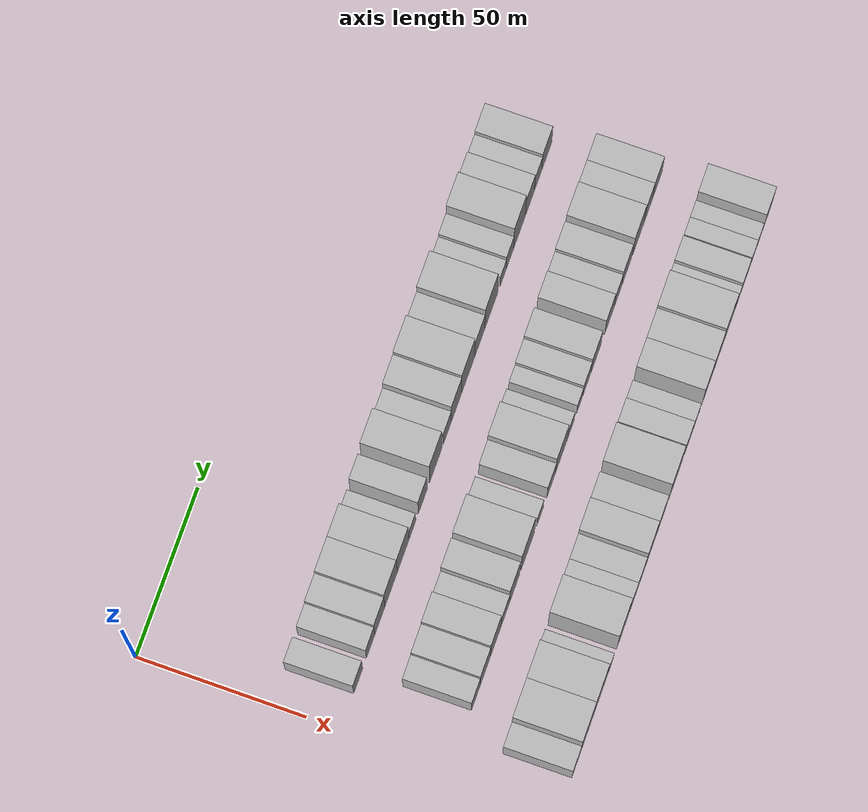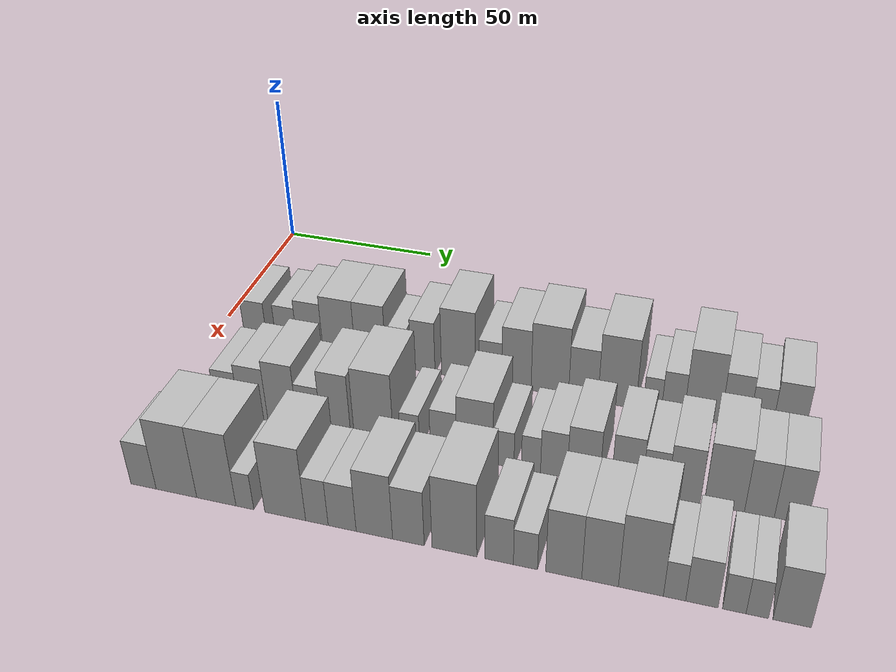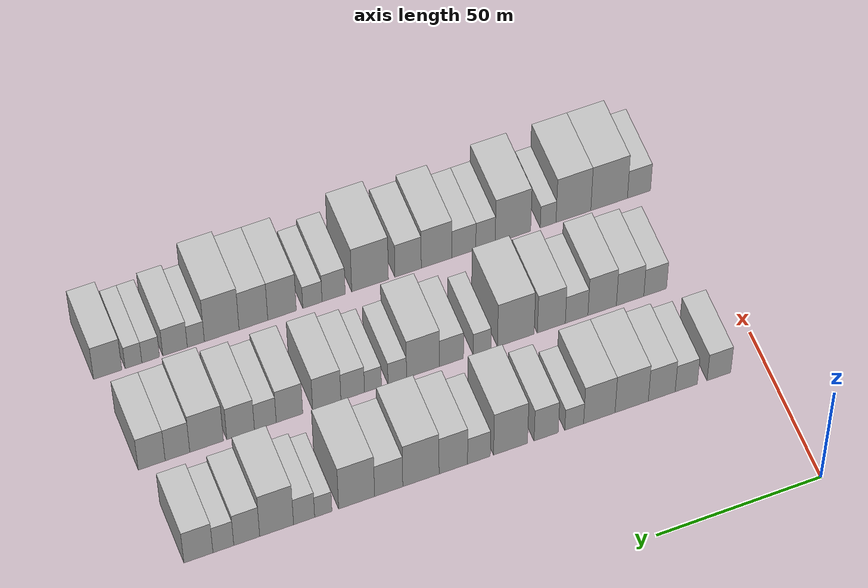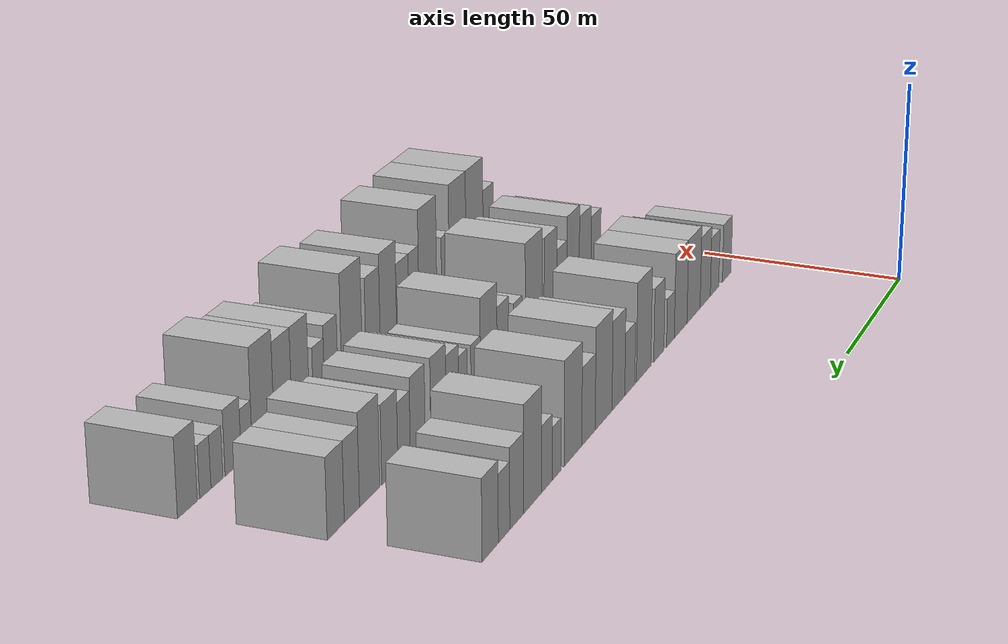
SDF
<sdf version="1.6">
 <world name="default">
  <model name="building_40">
   <static>1</static>
   <pose>50.0000 14.0486 0 0.000000 0.000000 0.000000</pose>
   <link name="link">
    <pose>0 0 7.50 0 0 0</pose>
    <collision name="collision"><geometry><box><size>20.0000 7.3120 15.0000</size></box></geometry></collision>
    <visual name="visual">
     <cast_shadows>0</cast_shadows>
     <geometry><box><size>20.0000 7.3120 15.0000</size></box></geometry>
     <material>
      <script>
       <uri>model://HANNAS_wall/materials/scripts</uri>
       <uri>model://HANNAS_wall/materials/textures</uri>
       <name>vrc/HANNAS_wall</name>
      </script>
     </material>
    </visual>
   </link>
  </model>
  <model name="building_41">
   <static>1</static>
   <pose>50.0000 24.1313 0 0.000000 0.000000 0.000000</pose>
   <link name="link">
    <pose>0 0 7.50 0 0 0</pose>
    <collision name="collision"><geometry><box><size>20.0000 6.8536 15.0000</size></box></geometry></collision>
    <visual name="visual">
     <cast_shadows>0</cast_shadows>
     <geometry><box><size>20.0000 6.8536 15.0000</size></box></geometry>
     <material>
      <script>
       <uri>model://HANNAS_wall/materials/scripts</uri>
       <uri>model://HANNAS_wall/materials/textures</uri>
       <name>vrc/HANNAS_wall</name>
      </script>
     </material>
    </visual>
   </link>
  </model>
  <model name="building_42">
   <static>1</static>
   <pose>50.0000 31.6831 0 0.000000 0.000000 0.000000</pose>
   <link name="link">
    <pose>0 0 9.00 0 0 0</pose>
    <collision name="collision"><geometry><box><size>20.0000 8.2501 18.0000</size></box></geometry></collision>
    <visual name="visual">
     <cast_shadows>0</cast_shadows>
     <geometry><box><size>20.0000 8.2501 18.0000</size></box></geometry>
     <material>
      <script>
       <uri>model://HANNAS_wall/materials/scripts</uri>
       <uri>model://HANNAS_wall/materials/textures</uri>
       <name>vrc/HANNAS_wall</name>
      </script>
     </material>
    </visual>
   </link>
  </model>
  <model name="building_43">
   <static>1</static>
   <pose>50.0000 40.9105 0 0.000000 0.000000 0.000000</pose>
   <link name="link">
    <pose>0 0 10.50 0 0 0</pose>
    <collision name="collision"><geometry><box><size>20.0000 10.2048 21.0000</size></box></geometry></collision>
    <visual name="visual">
     <cast_shadows>0</cast_shadows>
     <geometry><box><size>20.0000 10.2048 21.0000</size></box></geometry>
     <material>
      <script>
       <uri>model://HANNAS_wall/materials/scripts</uri>
       <uri>model://HANNAS_wall/materials/textures</uri>
       <name>vrc/HANNAS_wall</name>
      </script>
     </material>
    </visual>
   </link>
  </model>
  <model name="building_44">
   <static>1</static>
   <pose>50.0000 50.8271 0 0.000000 0.000000 0.000000</pose>
   <link name="link">
    <pose>0 0 10.50 0 0 0</pose>
    <collision name="collision"><geometry><box><size>20.0000 9.6284 21.0000</size></box></geometry></collision>
    <visual name="visual">
     <cast_shadows>0</cast_shadows>
     <geometry><box><size>20.0000 9.6284 21.0000</size></box></geometry>
     <material>
      <script>
       <uri>model://HANNAS_wall/materials/scripts</uri>
       <uri>model://HANNAS_wall/materials/textures</uri>
       <name>vrc/HANNAS_wall</name>
      </script>
     </material>
    </visual>
   </link>
  </model>
  <model name="building_45">
   <static>1</static>
   <pose>50.0000 58.5108 0 0.000000 0.000000 0.000000</pose>
   <link name="link">
    <pose>0 0 6.00 0 0 0</pose>
    <collision name="collision"><geometry><box><size>20.0000 5.7389 12.0000</size></box></geometry></collision>
    <visual name="visual">
     <cast_shadows>0</cast_shadows>
     <geometry><box><size>20.0000 5.7389 12.0000</size></box></geometry>
     <material>
      <script>
       <uri>model://HANNAS_wall/materials/scripts</uri>
       <uri>model://HANNAS_wall/materials/textures</uri>
       <name>vrc/HANNAS_wall</name>
      </script>
     </material>
    </visual>
   </link>
  </model>
  <model name="building_46">
   <static>1</static>
   <pose>50.0000 67.0606 0 0.000000 0.000000 0.000000</pose>
   <link name="link">
    <pose>0 0 9.00 0 0 0</pose>
    <collision name="collision"><geometry><box><size>20.0000 7.3606 18.0000</size></box></geometry></collision>
    <visual name="visual">
     <cast_shadows>0</cast_shadows>
     <geometry><box><size>20.0000 7.3606 18.0000</size></box></geometry>
     <material>
      <script>
       <uri>model://HANNAS_wall/materials/scripts</uri>
       <uri>model://HANNAS_wall/materials/textures</uri>
       <name>vrc/HANNAS_wall</name>
      </script>
     </material>
    </visual>
   </link>
  </model>
  <model name="building_47">
   <static>1</static>
   <pose>50.0000 77.8903 0 0.000000 0.000000 0.000000</pose>
   <link name="link">
    <pose>0 0 12.00 0 0 0</pose>
    <collision name="collision"><geometry><box><size>20.0000 10.2989 24.0000</size></box></geometry></collision>
    <visual name="visual">
     <cast_shadows>0</cast_shadows>
     <geometry><box><size>20.0000 10.2989 24.0000</size></box></geometry>
     <material>
      <script>
       <uri>model://HANNAS_wall/materials/scripts</uri>
       <uri>model://HANNAS_wall/materials/textures</uri>
       <name>vrc/HANNAS_wall</name>
      </script>
     </material>
    </visual>
   </link>
  </model>
  <model name="building_48">
   <static>1</static>
   <pose>50.0000 87.4814 0 0.000000 0.000000 0.000000</pose>
   <link name="link">
    <pose>0 0 7.50 0 0 0</pose>
    <collision name="collision"><geometry><box><size>20.0000 6.8834 15.0000</size></box></geometry></collision>
    <visual name="visual">
     <cast_shadows>0</cast_shadows>
     <geometry><box><size>20.0000 6.8834 15.0000</size></box></geometry>
     <material>
      <script>
       <uri>model://HANNAS_wall/materials/scripts</uri>
       <uri>model://HANNAS_wall/materials/textures</uri>
       <name>vrc/HANNAS_wall</name>
      </script>
     </material>
    </visual>
   </link>
  </model>
  <model name="building_49">
   <static>1</static>
   <pose>50.0000 95.2231 0 0.000000 0.000000 0.000000</pose>
   <link name="link">
    <pose>0 0 10.50 0 0 0</pose>
    <collision name="collision"><geometry><box><size>20.0000 8.5998 21.0000</size></box></geometry></collision>
    <visual name="visual">
     <cast_shadows>0</cast_shadows>
     <geometry><box><size>20.0000 8.5998 21.0000</size></box></geometry>
     <material>
      <script>
       <uri>model://HANNAS_wall/materials/scripts</uri>
       <uri>model://HANNAS_wall/materials/textures</uri>
       <name>vrc/HANNAS_wall</name>
      </script>
     </material>
    </visual>
   </link>
  </model>
  <model name="building_50">
   <static>1</static>
   <pose>50.0000 104.9872 0 0.000000 0.000000 0.000000</pose>
   <link name="link">
    <pose>0 0 12.00 0 0 0</pose>
    <collision name="collision"><geometry><box><size>20.0000 10.9284 24.0000</size></box></geometry></collision>
    <visual name="visual">
     <cast_shadows>0</cast_shadows>
     <geometry><box><size>20.0000 10.9284 24.0000</size></box></geometry>
     <material>
      <script>
       <uri>model://HANNAS_wall/materials/scripts</uri>
       <uri>model://HANNAS_wall/materials/textures</uri>
       <name>vrc/HANNAS_wall</name>
      </script>
     </material>
    </visual>
   </link>
  </model>
  <model name="building_51">
   <static>1</static>
   <pose>50.0000 114.6796 0 0.000000 0.000000 0.000000</pose>
   <link name="link">
    <pose>0 0 9.00 0 0 0</pose>
    <collision name="collision"><geometry><box><size>20.0000 8.4564 18.0000</size></box></geometry></collision>
    <visual name="visual">
     <cast_shadows>0</cast_shadows>
     <geometry><box><size>20.0000 8.4564 18.0000</size></box></geometry>
     <material>
      <script>
       <uri>model://HANNAS_wall/materials/scripts</uri>
       <uri>model://HANNAS_wall/materials/textures</uri>
       <name>vrc/HANNAS_wall</name>
      </script>
     </material>
    </visual>
   </link>
  </model>
  <model name="building_52">
   <static>1</static>
   <pose>50.0000 124.3021 0 0.000000 0.000000 0.000000</pose>
   <link name="link">
    <pose>0 0 12.00 0 0 0</pose>
    <collision name="collision"><geometry><box><size>20.0000 10.7887 24.0000</size></box></geometry></collision>
    <visual name="visual">
     <cast_shadows>0</cast_shadows>
     <geometry><box><size>20.0000 10.7887 24.0000</size></box></geometry>
     <material>
      <script>
       <uri>model://HANNAS_wall/materials/scripts</uri>
       <uri>model://HANNAS_wall/materials/textures</uri>
       <name>vrc/HANNAS_wall</name>
      </script>
     </material>
    </visual>
   </link>
  </model>
  <model name="building_53">
   <static>1</static>
   <pose>50.0000 134.2766 0 0.000000 0.000000 0.000000</pose>
   <link name="link">
    <pose>0 0 6.00 0 0 0</pose>
    <collision name="collision"><geometry><box><size>20.0000 5.1604 12.0000</size></box></geometry></collision>
    <visual name="visual">
     <cast_shadows>0</cast_shadows>
     <geometry><box><size>20.0000 5.1604 12.0000</size></box></geometry>
     <material>
      <script>
       <uri>model://HANNAS_wall/materials/scripts</uri>
       <uri>model://HANNAS_wall/materials/textures</uri>
       <name>vrc/HANNAS_wall</name>
      </script>
     </material>
    </visual>
   </link>
  </model>
  <model name="building_54">
   <static>1</static>
   <pose>50.0000 140.0000 0 0.000000 0.000000 0.000000</pose>
   <link name="link">
    <pose>0 0 7.50 0 0 0</pose>
    <collision name="collision"><geometry><box><size>20.0000 6.2863 15.0000</size></box></geometry></collision>
    <visual name="visual">
     <cast_shadows>0</cast_shadows>
     <geometry><box><size>20.0000 6.2863 15.0000</size></box></geometry>
     <material>
      <script>
       <uri>model://HANNAS_wall/materials/scripts</uri>
       <uri>model://HANNAS_wall/materials/textures</uri>
       <name>vrc/HANNAS_wall</name>
      </script>
     </material>
    </visual>
   </link>
  </model>
  <model name="building_55">
   <static>1</static>
   <pose>50.0000 148.1818 0 0.000000 0.000000 0.000000</pose>
   <link name="link">
    <pose>0 0 12.00 0 0 0</pose>
    <collision name="collision"><geometry><box><size>20.0000 10.0774 24.0000</size></box></geometry></collision>
    <visual name="visual">
     <cast_shadows>0</cast_shadows>
     <geometry><box><size>20.0000 10.0774 24.0000</size></box></geometry>
     <material>
      <script>
       <uri>model://HANNAS_wall/materials/scripts</uri>
       <uri>model://HANNAS_wall/materials/textures</uri>
       <name>vrc/HANNAS_wall</name>
      </script>
     </material>
    </visual>
   </link>
  </model>
  <model name="building_56">
   <static>1</static>
   <pose>50.0000 157.0683 0 0.000000 0.000000 0.000000</pose>
   <link name="link">
    <pose>0 0 9.00 0 0 0</pose>
    <collision name="collision"><geometry><box><size>20.0000 7.6956 18.0000</size></box></geometry></collision>
    <visual name="visual">
     <cast_shadows>0</cast_shadows>
     <geometry><box><size>20.0000 7.6956 18.0000</size></box></geometry>
     <material>
      <script>
       <uri>model://HANNAS_wall/materials/scripts</uri>
       <uri>model://HANNAS_wall/materials/textures</uri>
       <name>vrc/HANNAS_wall</name>
      </script>
     </material>
    </visual>
   </link>
  </model>
  <model name="building_57">
   <static>1</static>
   <pose>50.0000 164.0020 0 0.000000 0.000000 0.000000</pose>
   <link name="link">
    <pose>0 0 7.50 0 0 0</pose>
    <collision name="collision"><geometry><box><size>20.0000 6.1717 15.0000</size></box></geometry></collision>
    <visual name="visual">
     <cast_shadows>0</cast_shadows>
     <geometry><box><size>20.0000 6.1717 15.0000</size></box></geometry>
     <material>
      <script>
       <uri>model://HANNAS_wall/materials/scripts</uri>
       <uri>model://HANNAS_wall/materials/textures</uri>
       <name>vrc/HANNAS_wall</name>
      </script>
     </material>
    </visual>
   </link>
  </model>
  <model name="building_58">
   <static>1</static>
   <pose>50.0000 171.3934 0 0.000000 0.000000 0.000000</pose>
   <link name="link">
    <pose>0 0 9.00 0 0 0</pose>
    <collision name="collision"><geometry><box><size>20.0000 8.6112 18.0000</size></box></geometry></collision>
    <visual name="visual">
     <cast_shadows>0</cast_shadows>
     <geometry><box><size>20.0000 8.6112 18.0000</size></box></geometry>
     <material>
      <script>
       <uri>model://HANNAS_wall/materials/scripts</uri>
       <uri>model://HANNAS_wall/materials/textures</uri>
       <name>vrc/HANNAS_wall</name>
      </script>
     </material>
    </visual>
   </link>
  </model>
  <model name="building_115">
   <static>1</static>
   <pose>82.0000 20.3005 0 0.000000 0.000000 0.000000</pose>
   <link name="link">
    <pose>0 0 7.50 0 0 0</pose>
    <collision name="collision"><geometry><box><size>20.0000 7.0862 15.0000</size></box></geometry></collision>
    <visual name="visual">
     <cast_shadows>0</cast_shadows>
     <geometry><box><size>20.0000 7.0862 15.0000</size></box></geometry>
     <material>
      <script>
       <uri>model://HANNAS_wall/materials/scripts</uri>
       <uri>model://HANNAS_wall/materials/textures</uri>
       <name>vrc/HANNAS_wall</name>
      </script>
     </material>
    </visual>
   </link>
  </model>
  <model name="building_116">
   <static>1</static>
   <pose>82.0000 28.1052 0 0.000000 0.000000 0.000000</pose>
   <link name="link">
    <pose>0 0 9.00 0 0 0</pose>
    <collision name="collision"><geometry><box><size>20.0000 8.5234 18.0000</size></box></geometry></collision>
    <visual name="visual">
     <cast_shadows>0</cast_shadows>
     <geometry><box><size>20.0000 8.5234 18.0000</size></box></geometry>
     <material>
      <script>
       <uri>model://HANNAS_wall/materials/scripts</uri>
       <uri>model://HANNAS_wall/materials/textures</uri>
       <name>vrc/HANNAS_wall</name>
      </script>
     </material>
    </visual>
   </link>
  </model>
  <model name="building_117">
   <static>1</static>
   <pose>82.0000 36.7835 0 0.000000 0.000000 0.000000</pose>
   <link name="link">
    <pose>0 0 10.50 0 0 0</pose>
    <collision name="collision"><geometry><box><size>20.0000 8.8331 21.0000</size></box></geometry></collision>
    <visual name="visual">
     <cast_shadows>0</cast_shadows>
     <geometry><box><size>20.0000 8.8331 21.0000</size></box></geometry>
     <material>
      <script>
       <uri>model://HANNAS_wall/materials/scripts</uri>
       <uri>model://HANNAS_wall/materials/textures</uri>
       <name>vrc/HANNAS_wall</name>
      </script>
     </material>
    </visual>
   </link>
  </model>
  <model name="building_118">
   <static>1</static>
   <pose>82.0000 44.6955 0 0.000000 0.000000 0.000000</pose>
   <link name="link">
    <pose>0 0 7.50 0 0 0</pose>
    <collision name="collision"><geometry><box><size>20.0000 6.9909 15.0000</size></box></geometry></collision>
    <visual name="visual">
     <cast_shadows>0</cast_shadows>
     <geometry><box><size>20.0000 6.9909 15.0000</size></box></geometry>
     <material>
      <script>
       <uri>model://HANNAS_wall/materials/scripts</uri>
       <uri>model://HANNAS_wall/materials/textures</uri>
       <name>vrc/HANNAS_wall</name>
      </script>
     </material>
    </visual>
   </link>
  </model>
  <model name="building_119">
   <static>1</static>
   <pose>82.0000 52.5071 0 0.000000 0.000000 0.000000</pose>
   <link name="link">
    <pose>0 0 10.50 0 0 0</pose>
    <collision name="collision"><geometry><box><size>20.0000 8.6322 21.0000</size></box></geometry></collision>
    <visual name="visual">
     <cast_shadows>0</cast_shadows>
     <geometry><box><size>20.0000 8.6322 21.0000</size></box></geometry>
     <material>
      <script>
       <uri>model://HANNAS_wall/materials/scripts</uri>
       <uri>model://HANNAS_wall/materials/textures</uri>
       <name>vrc/HANNAS_wall</name>
      </script>
     </material>
    </visual>
   </link>
  </model>
  <model name="building_120">
   <static>1</static>
   <pose>82.0000 63.4672 0 0.000000 0.000000 0.000000</pose>
   <link name="link">
    <pose>0 0 12.00 0 0 0</pose>
    <collision name="collision"><geometry><box><size>20.0000 11.2880 24.0000</size></box></geometry></collision>
    <visual name="visual">
     <cast_shadows>0</cast_shadows>
     <geometry><box><size>20.0000 11.2880 24.0000</size></box></geometry>
     <material>
      <script>
       <uri>model://HANNAS_wall/materials/scripts</uri>
       <uri>model://HANNAS_wall/materials/textures</uri>
       <name>vrc/HANNAS_wall</name>
      </script>
     </material>
    </visual>
   </link>
  </model>
  <model name="building_121">
   <static>1</static>
   <pose>82.0000 73.8252 0 0.000000 0.000000 0.000000</pose>
   <link name="link">
    <pose>0 0 6.00 0 0 0</pose>
    <collision name="collision"><geometry><box><size>20.0000 5.4280 12.0000</size></box></geometry></collision>
    <visual name="visual">
     <cast_shadows>0</cast_shadows>
     <geometry><box><size>20.0000 5.4280 12.0000</size></box></geometry>
     <material>
      <script>
       <uri>model://HANNAS_wall/materials/scripts</uri>
       <uri>model://HANNAS_wall/materials/textures</uri>
       <name>vrc/HANNAS_wall</name>
      </script>
     </material>
    </visual>
   </link>
  </model>
  <model name="building_122">
   <static>1</static>
   <pose>82.0000 83.1907 0 0.000000 0.000000 0.000000</pose>
   <link name="link">
    <pose>0 0 7.50 0 0 0</pose>
    <collision name="collision"><geometry><box><size>20.0000 7.3030 15.0000</size></box></geometry></collision>
    <visual name="visual">
     <cast_shadows>0</cast_shadows>
     <geometry><box><size>20.0000 7.3030 15.0000</size></box></geometry>
     <material>
      <script>
       <uri>model://HANNAS_wall/materials/scripts</uri>
       <uri>model://HANNAS_wall/materials/textures</uri>
       <name>vrc/HANNAS_wall</name>
      </script>
     </material>
    </visual>
   </link>
  </model>
  <model name="building_123">
   <static>1</static>
   <pose>82.0000 91.8933 0 0.000000 0.000000 0.000000</pose>
   <link name="link">
    <pose>0 0 10.50 0 0 0</pose>
    <collision name="collision"><geometry><box><size>20.0000 10.1023 21.0000</size></box></geometry></collision>
    <visual name="visual">
     <cast_shadows>0</cast_shadows>
     <geometry><box><size>20.0000 10.1023 21.0000</size></box></geometry>
     <material>
      <script>
       <uri>model://HANNAS_wall/materials/scripts</uri>
       <uri>model://HANNAS_wall/materials/textures</uri>
       <name>vrc/HANNAS_wall</name>
      </script>
     </material>
    </visual>
   </link>
  </model>
  <model name="building_124">
   <static>1</static>
   <pose>82.0000 99.7608 0 0.000000 0.000000 0.000000</pose>
   <link name="link">
    <pose>0 0 6.00 0 0 0</pose>
    <collision name="collision"><geometry><box><size>20.0000 5.6327 12.0000</size></box></geometry></collision>
    <visual name="visual">
     <cast_shadows>0</cast_shadows>
     <geometry><box><size>20.0000 5.6327 12.0000</size></box></geometry>
     <material>
      <script>
       <uri>model://HANNAS_wall/materials/scripts</uri>
       <uri>model://HANNAS_wall/materials/textures</uri>
       <name>vrc/HANNAS_wall</name>
      </script>
     </material>
    </visual>
   </link>
  </model>
  <model name="building_125">
   <static>1</static>
   <pose>82.0000 107.1546 0 0.000000 0.000000 0.000000</pose>
   <link name="link">
    <pose>0 0 6.00 0 0 0</pose>
    <collision name="collision"><geometry><box><size>20.0000 5.1550 12.0000</size></box></geometry></collision>
    <visual name="visual">
     <cast_shadows>0</cast_shadows>
     <geometry><box><size>20.0000 5.1550 12.0000</size></box></geometry>
     <material>
      <script>
       <uri>model://HANNAS_wall/materials/scripts</uri>
       <uri>model://HANNAS_wall/materials/textures</uri>
       <name>vrc/HANNAS_wall</name>
      </script>
     </material>
    </visual>
   </link>
  </model>
  <model name="building_126">
   <static>1</static>
   <pose>82.0000 113.3103 0 0.000000 0.000000 0.000000</pose>
   <link name="link">
    <pose>0 0 7.50 0 0 0</pose>
    <collision name="collision"><geometry><box><size>20.0000 7.1564 15.0000</size></box></geometry></collision>
    <visual name="visual">
     <cast_shadows>0</cast_shadows>
     <geometry><box><size>20.0000 7.1564 15.0000</size></box></geometry>
     <material>
      <script>
       <uri>model://HANNAS_wall/materials/scripts</uri>
       <uri>model://HANNAS_wall/materials/textures</uri>
       <name>vrc/HANNAS_wall</name>
      </script>
     </material>
    </visual>
   </link>
  </model>
  <model name="building_127">
   <static>1</static>
   <pose>82.0000 121.1633 0 0.000000 0.000000 0.000000</pose>
   <link name="link">
    <pose>0 0 9.00 0 0 0</pose>
    <collision name="collision"><geometry><box><size>20.0000 8.5494 18.0000</size></box></geometry></collision>
    <visual name="visual">
     <cast_shadows>0</cast_shadows>
     <geometry><box><size>20.0000 8.5494 18.0000</size></box></geometry>
     <material>
      <script>
       <uri>model://HANNAS_wall/materials/scripts</uri>
       <uri>model://HANNAS_wall/materials/textures</uri>
       <name>vrc/HANNAS_wall</name>
      </script>
     </material>
    </visual>
   </link>
  </model>
  <model name="building_128">
   <static>1</static>
   <pose>82.0000 132.4394 0 0.000000 0.000000 0.000000</pose>
   <link name="link">
    <pose>0 0 9.00 0 0 0</pose>
    <collision name="collision"><geometry><box><size>20.0000 8.0028 18.0000</size></box></geometry></collision>
    <visual name="visual">
     <cast_shadows>0</cast_shadows>
     <geometry><box><size>20.0000 8.0028 18.0000</size></box></geometry>
     <material>
      <script>
       <uri>model://HANNAS_wall/materials/scripts</uri>
       <uri>model://HANNAS_wall/materials/textures</uri>
       <name>vrc/HANNAS_wall</name>
      </script>
     </material>
    </visual>
   </link>
  </model>
  <model name="building_129">
   <static>1</static>
   <pose>82.0000 139.7222 0 0.000000 0.000000 0.000000</pose>
   <link name="link">
    <pose>0 0 7.50 0 0 0</pose>
    <collision name="collision"><geometry><box><size>20.0000 6.5629 15.0000</size></box></geometry></collision>
    <visual name="visual">
     <cast_shadows>0</cast_shadows>
     <geometry><box><size>20.0000 6.5629 15.0000</size></box></geometry>
     <material>
      <script>
       <uri>model://HANNAS_wall/materials/scripts</uri>
       <uri>model://HANNAS_wall/materials/textures</uri>
       <name>vrc/HANNAS_wall</name>
      </script>
     </material>
    </visual>
   </link>
  </model>
  <model name="building_130">
   <static>1</static>
   <pose>82.0000 147.1626 0 0.000000 0.000000 0.000000</pose>
   <link name="link">
    <pose>0 0 9.00 0 0 0</pose>
    <collision name="collision"><geometry><box><size>20.0000 8.3179 18.0000</size></box></geometry></collision>
    <visual name="visual">
     <cast_shadows>0</cast_shadows>
     <geometry><box><size>20.0000 8.3179 18.0000</size></box></geometry>
     <material>
      <script>
       <uri>model://HANNAS_wall/materials/scripts</uri>
       <uri>model://HANNAS_wall/materials/textures</uri>
       <name>vrc/HANNAS_wall</name>
      </script>
     </material>
    </visual>
   </link>
  </model>
  <model name="building_131">
   <static>1</static>
   <pose>82.0000 157.3654 0 0.000000 0.000000 0.000000</pose>
   <link name="link">
    <pose>0 0 10.50 0 0 0</pose>
    <collision name="collision"><geometry><box><size>20.0000 10.0877 21.0000</size></box></geometry></collision>
    <visual name="visual">
     <cast_shadows>0</cast_shadows>
     <geometry><box><size>20.0000 10.0877 21.0000</size></box></geometry>
     <material>
      <script>
       <uri>model://HANNAS_wall/materials/scripts</uri>
       <uri>model://HANNAS_wall/materials/textures</uri>
       <name>vrc/HANNAS_wall</name>
      </script>
     </material>
    </visual>
   </link>
  </model>
  <model name="building_132">
   <static>1</static>
   <pose>82.0000 166.0904 0 0.000000 0.000000 0.000000</pose>
   <link name="link">
    <pose>0 0 9.00 0 0 0</pose>
    <collision name="collision"><geometry><box><size>20.0000 7.3622 18.0000</size></box></geometry></collision>
    <visual name="visual">
     <cast_shadows>0</cast_shadows>
     <geometry><box><size>20.0000 7.3622 18.0000</size></box></geometry>
     <material>
      <script>
       <uri>model://HANNAS_wall/materials/scripts</uri>
       <uri>model://HANNAS_wall/materials/textures</uri>
       <name>vrc/HANNAS_wall</name>
      </script>
     </material>
    </visual>
   </link>
  </model>
  <model name="building_133">
   <static>1</static>
   <pose>82.0000 173.7983 0 0.000000 0.000000 0.000000</pose>
   <link name="link">
    <pose>0 0 9.00 0 0 0</pose>
    <collision name="collision"><geometry><box><size>20.0000 8.0537 18.0000</size></box></geometry></collision>
    <visual name="visual">
     <cast_shadows>0</cast_shadows>
     <geometry><box><size>20.0000 8.0537 18.0000</size></box></geometry>
     <material>
      <script>
       <uri>model://HANNAS_wall/materials/scripts</uri>
       <uri>model://HANNAS_wall/materials/textures</uri>
       <name>vrc/HANNAS_wall</name>
      </script>
     </material>
    </visual>
   </link>
  </model>
  <model name="building_194">
   <static>1</static>
   <pose>114.0000 12.0042 0 0.000000 0.000000 0.000000</pose>
   <link name="link">
    <pose>0 0 7.50 0 0 0</pose>
    <collision name="collision"><geometry><box><size>20.0000 7.2663 15.0000</size></box></geometry></collision>
    <visual name="visual">
     <cast_shadows>0</cast_shadows>
     <geometry><box><size>20.0000 7.2663 15.0000</size></box></geometry>
     <material>
      <script>
       <uri>model://HANNAS_wall/materials/scripts</uri>
       <uri>model://HANNAS_wall/materials/textures</uri>
       <name>vrc/HANNAS_wall</name>
      </script>
     </material>
    </visual>
   </link>
  </model>
  <model name="building_195">
   <static>1</static>
   <pose>114.0000 21.3939 0 0.000000 0.000000 0.000000</pose>
   <link name="link">
    <pose>0 0 12.00 0 0 0</pose>
    <collision name="collision"><geometry><box><size>20.0000 11.5131 24.0000</size></box></geometry></collision>
    <visual name="visual">
     <cast_shadows>0</cast_shadows>
     <geometry><box><size>20.0000 11.5131 24.0000</size></box></geometry>
     <material>
      <script>
       <uri>model://HANNAS_wall/materials/scripts</uri>
       <uri>model://HANNAS_wall/materials/textures</uri>
       <name>vrc/HANNAS_wall</name>
      </script>
     </material>
    </visual>
   </link>
  </model>
  <model name="building_196">
   <static>1</static>
   <pose>114.0000 32.6145 0 0.000000 0.000000 0.000000</pose>
   <link name="link">
    <pose>0 0 12.00 0 0 0</pose>
    <collision name="collision"><geometry><box><size>20.0000 10.9281 24.0000</size></box></geometry></collision>
    <visual name="visual">
     <cast_shadows>0</cast_shadows>
     <geometry><box><size>20.0000 10.9281 24.0000</size></box></geometry>
     <material>
      <script>
       <uri>model://HANNAS_wall/materials/scripts</uri>
       <uri>model://HANNAS_wall/materials/textures</uri>
       <name>vrc/HANNAS_wall</name>
      </script>
     </material>
    </visual>
   </link>
  </model>
  <model name="building_197">
   <static>1</static>
   <pose>114.0000 40.5374 0 0.000000 0.000000 0.000000</pose>
   <link name="link">
    <pose>0 0 6.00 0 0 0</pose>
    <collision name="collision"><geometry><box><size>20.0000 4.9178 12.0000</size></box></geometry></collision>
    <visual name="visual">
     <cast_shadows>0</cast_shadows>
     <geometry><box><size>20.0000 4.9178 12.0000</size></box></geometry>
     <material>
      <script>
       <uri>model://HANNAS_wall/materials/scripts</uri>
       <uri>model://HANNAS_wall/materials/textures</uri>
       <name>vrc/HANNAS_wall</name>
      </script>
     </material>
    </visual>
   </link>
  </model>
  <model name="building_198">
   <static>1</static>
   <pose>114.0000 51.5290 0 0.000000 0.000000 0.000000</pose>
   <link name="link">
    <pose>0 0 12.00 0 0 0</pose>
    <collision name="collision"><geometry><box><size>20.0000 11.0653 24.0000</size></box></geometry></collision>
    <visual name="visual">
     <cast_shadows>0</cast_shadows>
     <geometry><box><size>20.0000 11.0653 24.0000</size></box></geometry>
     <material>
      <script>
       <uri>model://HANNAS_wall/materials/scripts</uri>
       <uri>model://HANNAS_wall/materials/textures</uri>
       <name>vrc/HANNAS_wall</name>
      </script>
     </material>
    </visual>
   </link>
  </model>
  <model name="building_199">
   <static>1</static>
   <pose>114.0000 60.0744 0 0.000000 0.000000 0.000000</pose>
   <link name="link">
    <pose>0 0 7.50 0 0 0</pose>
    <collision name="collision"><geometry><box><size>20.0000 6.0256 15.0000</size></box></geometry></collision>
    <visual name="visual">
     <cast_shadows>0</cast_shadows>
     <geometry><box><size>20.0000 6.0256 15.0000</size></box></geometry>
     <material>
      <script>
       <uri>model://HANNAS_wall/materials/scripts</uri>
       <uri>model://HANNAS_wall/materials/textures</uri>
       <name>vrc/HANNAS_wall</name>
      </script>
     </material>
    </visual>
   </link>
  </model>
  <model name="building_200">
   <static>1</static>
   <pose>114.0000 66.7854 0 0.000000 0.000000 0.000000</pose>
   <link name="link">
    <pose>0 0 7.50 0 0 0</pose>
    <collision name="collision"><geometry><box><size>20.0000 7.3966 15.0000</size></box></geometry></collision>
    <visual name="visual">
     <cast_shadows>0</cast_shadows>
     <geometry><box><size>20.0000 7.3966 15.0000</size></box></geometry>
     <material>
      <script>
       <uri>model://HANNAS_wall/materials/scripts</uri>
       <uri>model://HANNAS_wall/materials/textures</uri>
       <name>vrc/HANNAS_wall</name>
      </script>
     </material>
    </visual>
   </link>
  </model>
  <model name="building_201">
   <static>1</static>
   <pose>114.0000 75.2431 0 0.000000 0.000000 0.000000</pose>
   <link name="link">
    <pose>0 0 10.50 0 0 0</pose>
    <collision name="collision"><geometry><box><size>20.0000 9.5188 21.0000</size></box></geometry></collision>
    <visual name="visual">
     <cast_shadows>0</cast_shadows>
     <geometry><box><size>20.0000 9.5188 21.0000</size></box></geometry>
     <material>
      <script>
       <uri>model://HANNAS_wall/materials/scripts</uri>
       <uri>model://HANNAS_wall/materials/textures</uri>
       <name>vrc/HANNAS_wall</name>
      </script>
     </material>
    </visual>
   </link>
  </model>
  <model name="building_202">
   <static>1</static>
   <pose>114.0000 84.0705 0 0.000000 0.000000 0.000000</pose>
   <link name="link">
    <pose>0 0 9.00 0 0 0</pose>
    <collision name="collision"><geometry><box><size>20.0000 8.1359 18.0000</size></box></geometry></collision>
    <visual name="visual">
     <cast_shadows>0</cast_shadows>
     <geometry><box><size>20.0000 8.1359 18.0000</size></box></geometry>
     <material>
      <script>
       <uri>model://HANNAS_wall/materials/scripts</uri>
       <uri>model://HANNAS_wall/materials/textures</uri>
       <name>vrc/HANNAS_wall</name>
      </script>
     </material>
    </visual>
   </link>
  </model>
  <model name="building_203">
   <static>1</static>
   <pose>114.0000 95.7910 0 0.000000 0.000000 0.000000</pose>
   <link name="link">
    <pose>0 0 12.00 0 0 0</pose>
    <collision name="collision"><geometry><box><size>20.0000 11.3050 24.0000</size></box></geometry></collision>
    <visual name="visual">
     <cast_shadows>0</cast_shadows>
     <geometry><box><size>20.0000 11.3050 24.0000</size></box></geometry>
     <material>
      <script>
       <uri>model://HANNAS_wall/materials/scripts</uri>
       <uri>model://HANNAS_wall/materials/textures</uri>
       <name>vrc/HANNAS_wall</name>
      </script>
     </material>
    </visual>
   </link>
  </model>
  <model name="building_204">
   <static>1</static>
   <pose>114.0000 106.9950 0 0.000000 0.000000 0.000000</pose>
   <link name="link">
    <pose>0 0 7.50 0 0 0</pose>
    <collision name="collision"><geometry><box><size>20.0000 7.1031 15.0000</size></box></geometry></collision>
    <visual name="visual">
     <cast_shadows>0</cast_shadows>
     <geometry><box><size>20.0000 7.1031 15.0000</size></box></geometry>
     <material>
      <script>
       <uri>model://HANNAS_wall/materials/scripts</uri>
       <uri>model://HANNAS_wall/materials/textures</uri>
       <name>vrc/HANNAS_wall</name>
      </script>
     </material>
    </visual>
   </link>
  </model>
  <model name="building_205">
   <static>1</static>
   <pose>114.0000 113.4992 0 0.000000 0.000000 0.000000</pose>
   <link name="link">
    <pose>0 0 6.00 0 0 0</pose>
    <collision name="collision"><geometry><box><size>20.0000 5.9053 12.0000</size></box></geometry></collision>
    <visual name="visual">
     <cast_shadows>0</cast_shadows>
     <geometry><box><size>20.0000 5.9053 12.0000</size></box></geometry>
     <material>
      <script>
       <uri>model://HANNAS_wall/materials/scripts</uri>
       <uri>model://HANNAS_wall/materials/textures</uri>
       <name>vrc/HANNAS_wall</name>
      </script>
     </material>
    </visual>
   </link>
  </model>
  <model name="building_206">
   <static>1</static>
   <pose>114.0000 122.8072 0 0.000000 0.000000 0.000000</pose>
   <link name="link">
    <pose>0 0 10.50 0 0 0</pose>
    <collision name="collision"><geometry><box><size>20.0000 8.7107 21.0000</size></box></geometry></collision>
    <visual name="visual">
     <cast_shadows>0</cast_shadows>
     <geometry><box><size>20.0000 8.7107 21.0000</size></box></geometry>
     <material>
      <script>
       <uri>model://HANNAS_wall/materials/scripts</uri>
       <uri>model://HANNAS_wall/materials/textures</uri>
       <name>vrc/HANNAS_wall</name>
      </script>
     </material>
    </visual>
   </link>
  </model>
  <model name="building_207">
   <static>1</static>
   <pose>114.0000 131.5387 0 0.000000 0.000000 0.000000</pose>
   <link name="link">
    <pose>0 0 10.50 0 0 0</pose>
    <collision name="collision"><geometry><box><size>20.0000 8.7521 21.0000</size></box></geometry></collision>
    <visual name="visual">
     <cast_shadows>0</cast_shadows>
     <geometry><box><size>20.0000 8.7521 21.0000</size></box></geometry>
     <material>
      <script>
       <uri>model://HANNAS_wall/materials/scripts</uri>
       <uri>model://HANNAS_wall/materials/textures</uri>
       <name>vrc/HANNAS_wall</name>
      </script>
     </material>
    </visual>
   </link>
  </model>
  <model name="building_208">
   <static>1</static>
   <pose>114.0000 141.1939 0 0.000000 0.000000 0.000000</pose>
   <link name="link">
    <pose>0 0 12.00 0 0 0</pose>
    <collision name="collision"><geometry><box><size>20.0000 10.5583 24.0000</size></box></geometry></collision>
    <visual name="visual">
     <cast_shadows>0</cast_shadows>
     <geometry><box><size>20.0000 10.5583 24.0000</size></box></geometry>
     <material>
      <script>
       <uri>model://HANNAS_wall/materials/scripts</uri>
       <uri>model://HANNAS_wall/materials/textures</uri>
       <name>vrc/HANNAS_wall</name>
      </script>
     </material>
    </visual>
   </link>
  </model>
  <model name="building_209">
   <static>1</static>
   <pose>114.0000 149.0560 0 0.000000 0.000000 0.000000</pose>
   <link name="link">
    <pose>0 0 6.00 0 0 0</pose>
    <collision name="collision"><geometry><box><size>20.0000 5.1659 12.0000</size></box></geometry></collision>
    <visual name="visual">
     <cast_shadows>0</cast_shadows>
     <geometry><box><size>20.0000 5.1659 12.0000</size></box></geometry>
     <material>
      <script>
       <uri>model://HANNAS_wall/materials/scripts</uri>
       <uri>model://HANNAS_wall/materials/textures</uri>
       <name>vrc/HANNAS_wall</name>
      </script>
     </material>
    </visual>
   </link>
  </model>
  <model name="building_210">
   <static>1</static>
   <pose>114.0000 155.3542 0 0.000000 0.000000 0.000000</pose>
   <link name="link">
    <pose>0 0 7.50 0 0 0</pose>
    <collision name="collision"><geometry><box><size>20.0000 7.4306 15.0000</size></box></geometry></collision>
    <visual name="visual">
     <cast_shadows>0</cast_shadows>
     <geometry><box><size>20.0000 7.4306 15.0000</size></box></geometry>
     <material>
      <script>
       <uri>model://HANNAS_wall/materials/scripts</uri>
       <uri>model://HANNAS_wall/materials/textures</uri>
       <name>vrc/HANNAS_wall</name>
      </script>
     </material>
    </visual>
   </link>
  </model>
  <model name="building_211">
   <static>1</static>
   <pose>114.0000 162.7352 0 0.000000 0.000000 0.000000</pose>
   <link name="link">
    <pose>0 0 6.00 0 0 0</pose>
    <collision name="collision"><geometry><box><size>20.0000 5.3313 12.0000</size></box></geometry></collision>
    <visual name="visual">
     <cast_shadows>0</cast_shadows>
     <geometry><box><size>20.0000 5.3313 12.0000</size></box></geometry>
     <material>
      <script>
       <uri>model://HANNAS_wall/materials/scripts</uri>
       <uri>model://HANNAS_wall/materials/textures</uri>
       <name>vrc/HANNAS_wall</name>
      </script>
     </material>
    </visual>
   </link>
  </model>
  <model name="building_212">
   <static>1</static>
   <pose>114.0000 167.9223 0 0.000000 0.000000 0.000000</pose>
   <link name="link">
    <pose>0 0 6.00 0 0 0</pose>
    <collision name="collision"><geometry><box><size>20.0000 5.0428 12.0000</size></box></geometry></collision>
    <visual name="visual">
     <cast_shadows>0</cast_shadows>
     <geometry><box><size>20.0000 5.0428 12.0000</size></box></geometry>
     <material>
      <script>
       <uri>model://HANNAS_wall/materials/scripts</uri>
       <uri>model://HANNAS_wall/materials/textures</uri>
       <name>vrc/HANNAS_wall</name>
      </script>
     </material>
    </visual>
   </link>
  </model>
  <model name="building_213">
   <static>1</static>
   <pose>114.0000 175.7105 0 0.000000 0.000000 0.000000</pose>
   <link name="link">
    <pose>0 0 9.00 0 0 0</pose>
    <collision name="collision"><geometry><box><size>20.0000 8.5336 18.0000</size></box></geometry></collision>
    <visual name="visual">
     <cast_shadows>0</cast_shadows>
     <geometry><box><size>20.0000 8.5336 18.0000</size></box></geometry>
     <material>
      <script>
       <uri>model://HANNAS_wall/materials/scripts</uri>
       <uri>model://HANNAS_wall/materials/textures</uri>
       <name>vrc/HANNAS_wall</name>
      </script>
     </material>
    </visual>
   </link>
  </model>
 </world>
</sdf>
